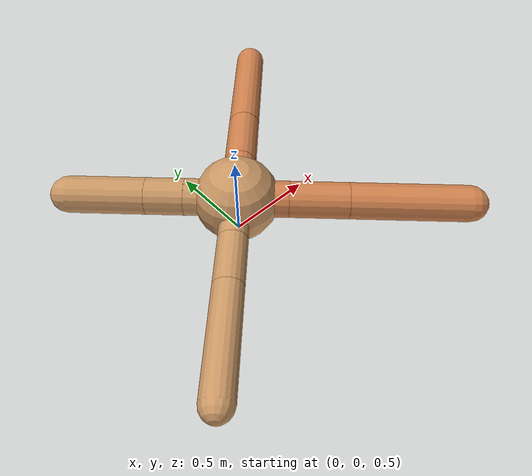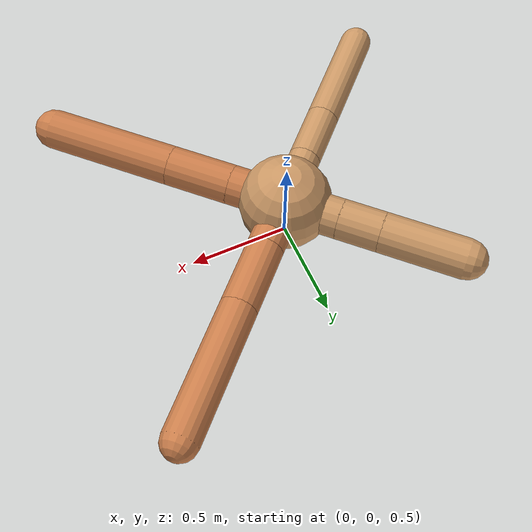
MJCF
<?xml version="1.0" ?>
<mujoco model="ant">

	<compiler angle="degree" coordinate="local" inertiafromgeom="true"/>

	<option integrator="RK4" timestep="0.01"/>

	<custom>

		<numeric data="0.0 0.0 0.55 1.0 0.0 0.0 0.0 0.0 1.0 0.0 -1.0 0.0 -1.0 0.0 1.0" name="init_qpos"/>

	</custom>

	<default>

		<joint armature="1" damping="1" limited="true"/>

		<geom conaffinity="0" condim="3" density="5.0" friction="1.5 0.1 0.1" margin="0.01" rgba="0.8 0.6 0.4 1"/>

	</default>

	<worldbody>

		<body name="torso" pos="0 0 0.75">

			<geom name="torso_geom" pos="0 0 0" size="0.23182260532606971" type="sphere"/>

			<!--joint armature="0" damping="0" limited="false" margin="0.01" name="root" pos="0 0 0" type="free"/-->

			<body name="front_left_leg" pos="0 0 0">

				<geom fromto="0 0 0 0.2 0.2 0" name="aux_1_geom" size="0.09195056968833537" type="capsule" rgba=".8 .5 .3 1"/>

				<body name="aux_1" pos="0.2 0.2 0">

					<joint axis="0 0 1" name="hip_1" pos="0.0 0.0 0.0" range="-40 40" type="hinge"/>

					<geom fromto="0 0 0 0.2445258616453026 0.2445258616453026 0" name="left_leg_geom" size="0.09195056968833537" type="capsule" rgba=".8 .5 .3 1"/>

					<body pos="0.2445258616453026 0.2445258616453026 0" name="front_left_foot">

						<joint axis="-1 1 0" name="ankle_1" pos="0.0 0.0 0.0" range="30 100" type="hinge"/>

						<geom fromto="0 0 0 0.4890517232906052 0.4890517232906052 0" name="left_ankle_geom" size="0.09195056968833537" type="capsule" rgba=".8 .5 .3 1"/>

					</body>

				</body>

			</body>

			<body name="front_right_leg" pos="0 0 0">

				<geom fromto="0 0 0 -0.2 0.2 0" name="aux_2_geom" size="0.1018577962579839" type="capsule"/>

				<body name="aux_2" pos="-0.2 0.2 0">

					<joint axis="0 0 1" name="hip_2" pos="0.0 0.0 0.0" range="-40 40" type="hinge"/>

					<geom fromto="0 0 0 -0.14916592413287458 0.14916592413287458 0" name="right_leg_geom" size="0.1018577962579839" type="capsule"/>

					<body pos="-0.14916592413287458 0.14916592413287458 0" name="front_right_foot">

						<joint axis="1 1 0" name="ankle_2" pos="0.0 0.0 0.0" range="-100 -30" type="hinge"/>

						<geom fromto="0 0 0 -0.29833184826574916 0.29833184826574916 0" name="right_ankle_geom" size="0.1018577962579839" type="capsule"/>

					</body>

				</body>

			</body>

			<body name="left_back_leg" pos="0 0 0">

				<geom fromto="0 0 0 -0.2 -0.2 0" name="aux_3_geom" size="0.08061390533656795" type="capsule"/>

				<body name="aux_3" pos="-0.2 -0.2 0">

					<joint axis="0 0 1" name="hip_3" pos="0.0 0.0 0.0" range="-40 40" type="hinge"/>

					<geom fromto="0 0 0 -0.19621229073753535 -0.19621229073753535 0" name="back_leg_geom" size="0.08061390533656795" type="capsule"/>

					<body pos="-0.19621229073753535 -0.19621229073753535 0" name="left_back_foot">

						<joint axis="-1 1 0" name="ankle_3" pos="0.0 0.0 0.0" range="-100 -30" type="hinge"/>

						<geom fromto="0 0 0 -0.3924245814750707 -0.3924245814750707 0" name="third_ankle_geom" size="0.08061390533656795" type="capsule"/>

					</body>

				</body>

			</body>

			<body name="right_back_leg" pos="0 0 0">

				<geom fromto="0 0 0 0.2 -0.2 0" name="aux_4_geom" size="0.10027680745174246" type="capsule" rgba=".8 .5 .3 1"/>

				<body name="aux_4" pos="0.2 -0.2 0">

					<joint axis="0 0 1" name="hip_4" pos="0.0 0.0 0.0" range="-40 40" type="hinge"/>

					<geom fromto="0 0 0 0.2292940715223456 -0.2292940715223456 0" name="rightback_leg_geom" size="0.10027680745174246" type="capsule" rgba=".8 .5 .3 1"/>

					<body pos="0.2292940715223456 -0.2292940715223456 0" name="right_back_foot">

						<joint axis="1 1 0" name="ankle_4" pos="0.0 0.0 0.0" range="30 100" type="hinge"/>

						<geom fromto="0 0 0 0.4585881430446912 -0.4585881430446912 0" name="fourth_ankle_geom" size="0.10027680745174246" type="capsule" rgba=".8 .5 .3 1"/>

					</body>

				</body>

			</body>

		</body>

	</worldbody>

	<actuator>

		<motor ctrllimited="true" ctrlrange="-1.0 1.0" joint="hip_4" gear="150"/>

		<motor ctrllimited="true" ctrlrange="-1.0 1.0" joint="ankle_4" gear="150"/>

		<motor ctrllimited="true" ctrlrange="-1.0 1.0" joint="hip_1" gear="150"/>

		<motor ctrllimited="true" ctrlrange="-1.0 1.0" joint="ankle_1" gear="150"/>

		<motor ctrllimited="true" ctrlrange="-1.0 1.0" joint="hip_2" gear="150"/>

		<motor ctrllimited="true" ctrlrange="-1.0 1.0" joint="ankle_2" gear="150"/>

		<motor ctrllimited="true" ctrlrange="-1.0 1.0" joint="hip_3" gear="150"/>

		<motor ctrllimited="true" ctrlrange="-1.0 1.0" joint="ankle_3" gear="150"/>

	</actuator>

</mujoco>
